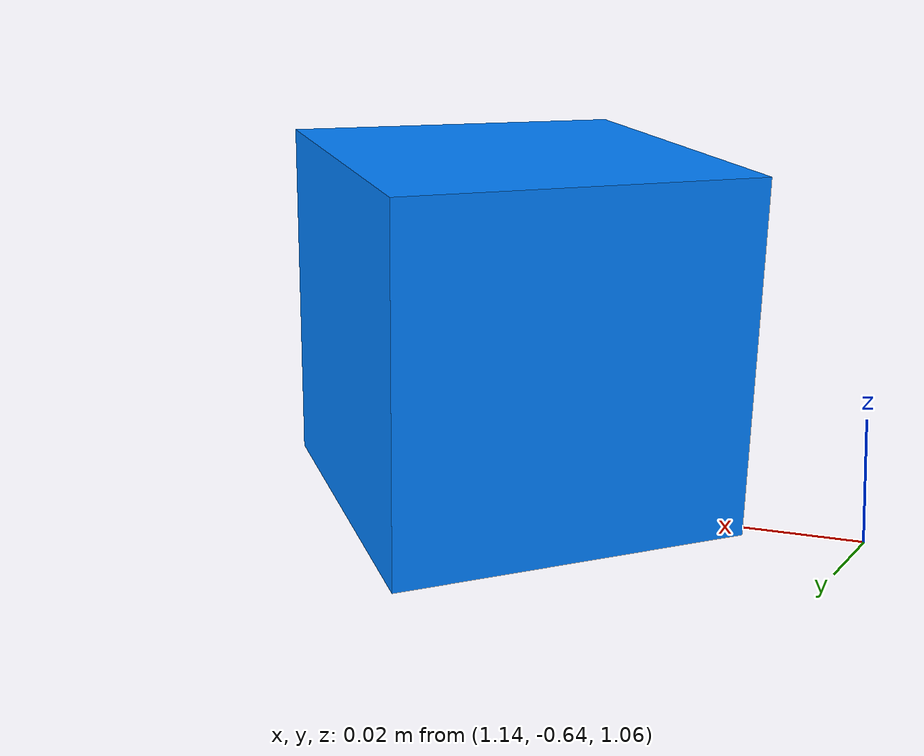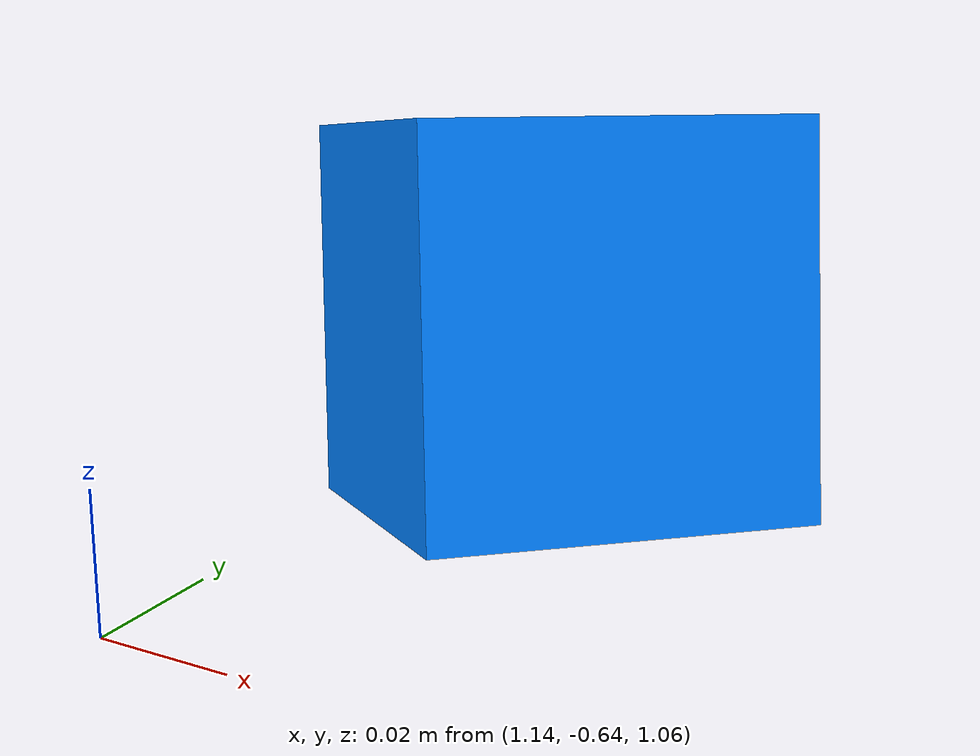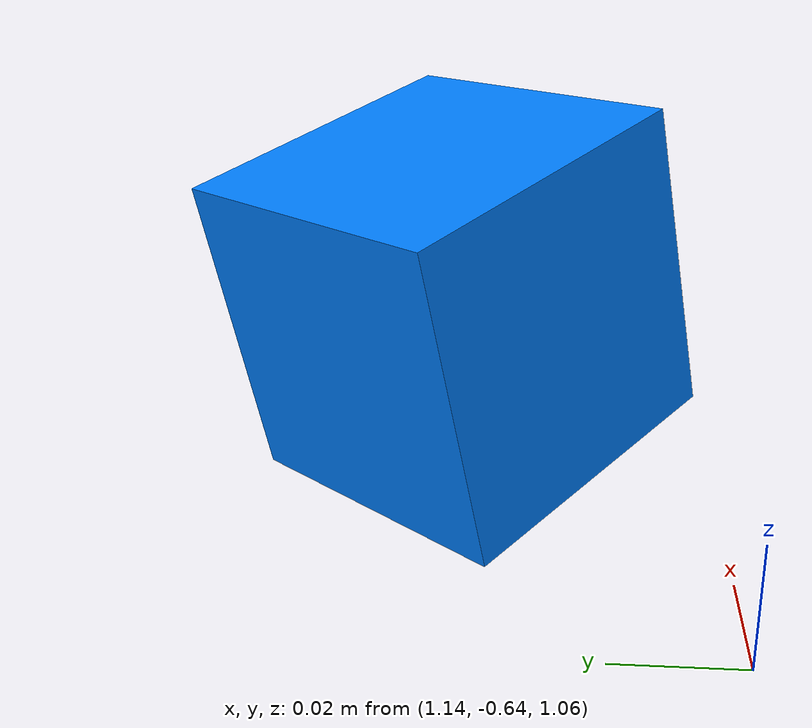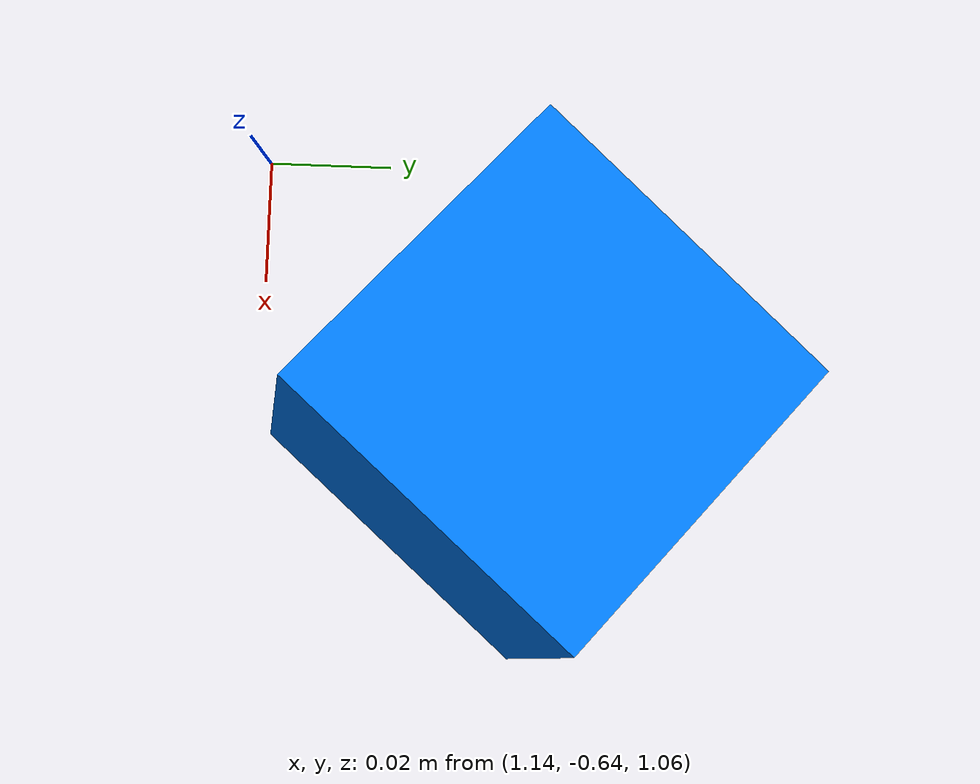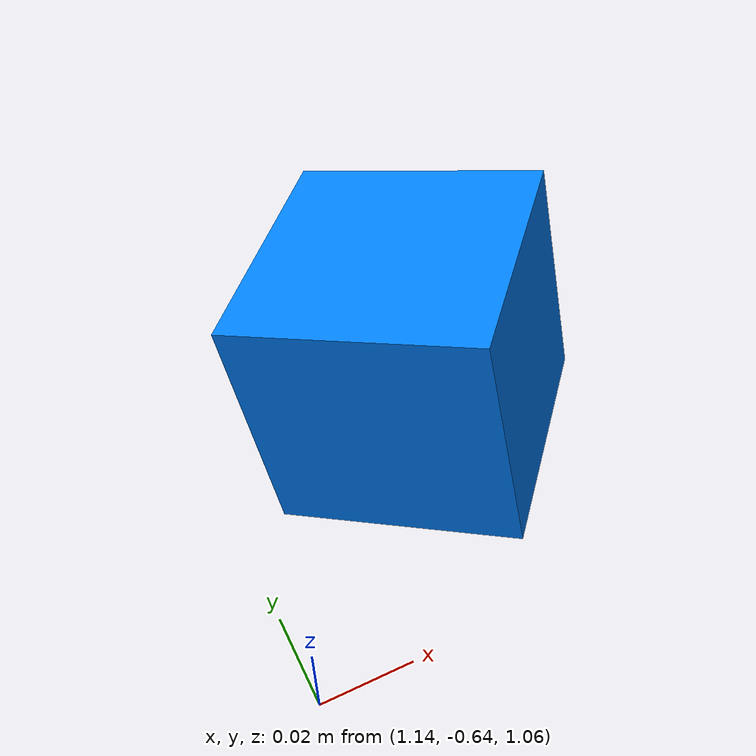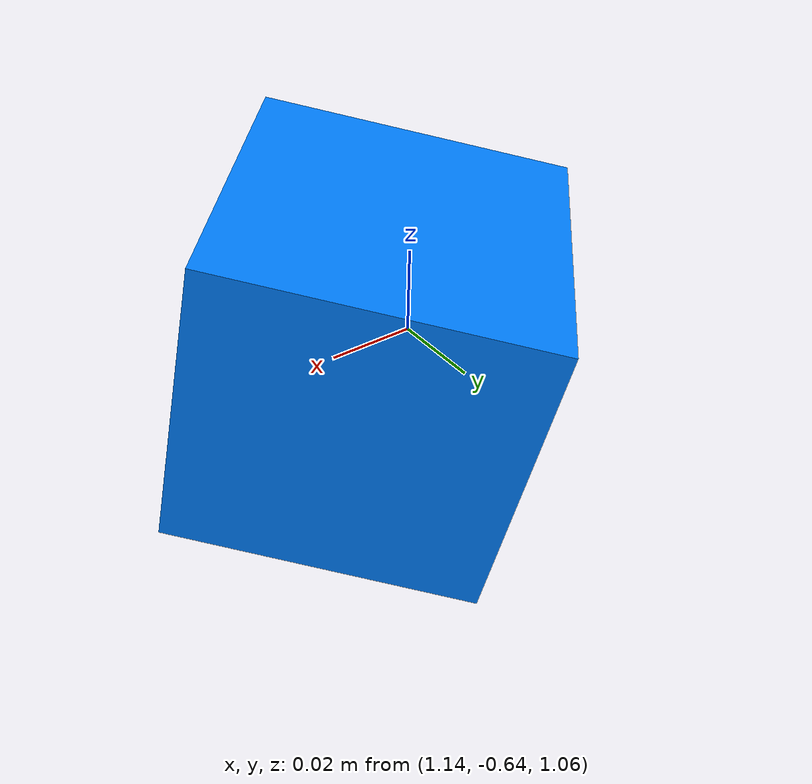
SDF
<?xml version="1.0" ?>
<sdf version="1.6">
  <model name="camera">
    <static>true</static>
    <!-- 主人手动调试确认的最佳视角：相机在桌面右前方，侧视偏俯。
         位置 (1.181, -0.596, 1.097)：桌面 (0.6,0,0.745) 右前方上方
         rpy (0.052, 0.199, 2.427)：朝桌面中心方向
         画面里：机械臂在左侧，桌面占主体，红块在中央 -->
    <pose>1.181 -0.596082 1.09714 0.051659 0.198579 2.42719</pose>
    <link name="camera_link">
      <visual name="visual">
        <geometry>
          <box><size>0.05 0.05 0.05</size></box>
        </geometry>
        <material>
          <ambient>0 0.5 1 1</ambient>
        </material>
      </visual>
      <sensor name="camera_sensor" type="camera">
        <update_rate>5</update_rate>
        <camera>
          <horizontal_fov>1.047</horizontal_fov>
          <image>
            <width>640</width>
            <height>480</height>
            <format>R8G8B8</format>
          </image>
          <clip>
            <near>0.1</near>
            <far>100</far>
          </clip>
        </camera>
        <plugin name="camera_controller" filename="libgazebo_ros_camera.so">
          <ros>
            <namespace>/camera</namespace>
            <remapping>image_raw:=image_raw</remapping>
          </ros>
          <camera_name>camera</camera_name>
          <frame_name>camera_link</frame_name>
        </plugin>
      </sensor>
    </link>
  </model>
</sdf>
